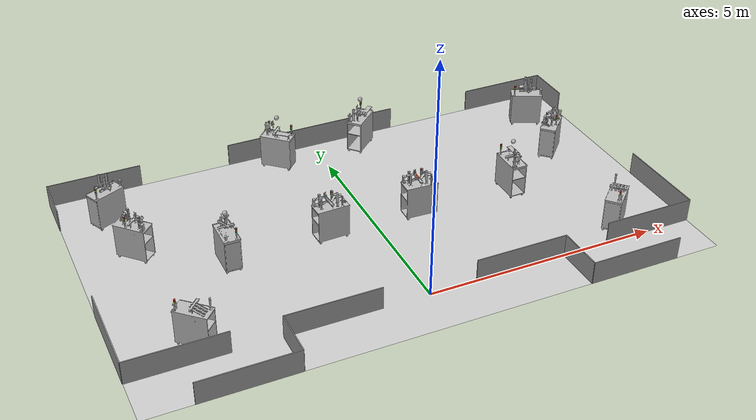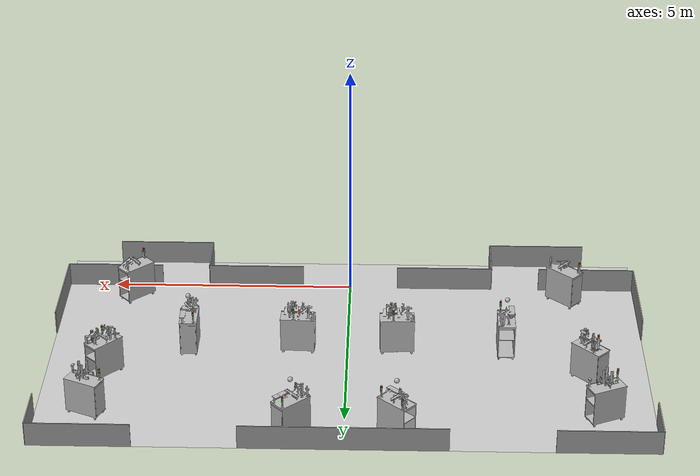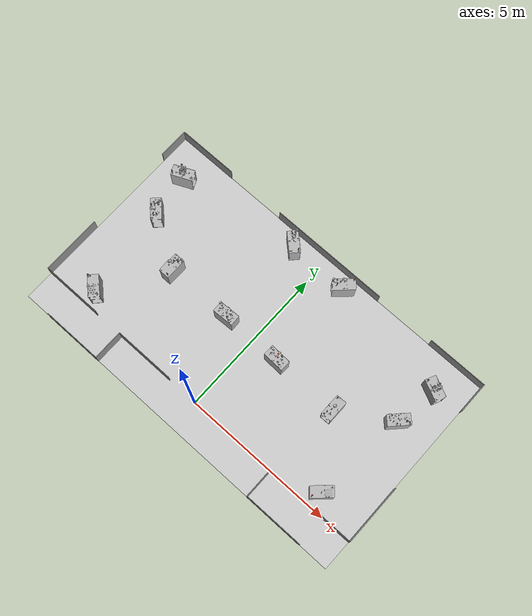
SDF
<?xml version="1.0"?>
<sdf version="1.4">
	<world name="bbu_2015">
	 <!-- Physics, to determine the simulation speed (step size and update rate) -->
		<physics type="ode">
			<max_step_size>0.00125</max_step_size>
			<real_time_factor>1</real_time_factor>
			<real_time_update_rate>1000</real_time_update_rate>
		</physics>

		<!-- A global light source -->
		<include>
		  <uri>model://sun</uri>
		</include>

		<include>
		  <uri>model://logistics_league_field</uri>
      	  <pose>0 2.5 0 0 0 0</pose>
		</include>

		<include>
		  <name>C-BS</name>
		  <uri>model://mps_base</uri>
      	  <pose>-5 4.9 0 0 0 0.43</pose>
		</include>
		<include>
		  <name>M-BS</name>
		  <uri>model://mps_base</uri>
      	  <pose>5 4.9 0 0 0 -0.43</pose>
		</include>

		<include>
		  <name>C-CS1</name>
		  <uri>model://mps_cap</uri>
      	  <pose>-1 5.5 0 0 0 2.4</pose>
		</include>
		<include>
		  <name>M-CS1</name>
		  <uri>model://mps_cap</uri>
      	  <pose>1 5.5 0 0 0 -2.4</pose>
		</include>

		<include>
		  <name>C-CS2</name>
		  <uri>model://mps_cap</uri>
      	  <pose>-3.2 2.5 0 0 0 1.57</pose>
		</include>
		<include>
		  <name>M-CS2</name>
		  <uri>model://mps_cap</uri>
      	  <pose>3.2 2.5 0 0 0 -1.57</pose>
		</include>

		<include>
		  <name>C-RS1</name>
		  <uri>model://mps_ring</uri>
      	  <pose>1 2.5 0 0 0 3.1</pose>
		</include>
		<include>
		  <name>M-RS1</name>
		  <uri>model://mps_ring</uri>
      	  <pose>-1 2.5 0 0 0 -3.1</pose>
		</include>

		<include>
		  <name>C-RS2</name>
		  <uri>model://mps_ring</uri>
      	  <pose>4.8 3.5 0 0 0 0.8</pose>
		</include>
		<include>
		  <name>M-RS2</name>
		  <uri>model://mps_ring</uri>
      	  <pose>-4.8 3.5 0 0 0 -0.8</pose>
		</include>

		<include>
		  <name>C-DS</name>
		  <uri>model://mps_delivery</uri>
      	  <pose>4.5 0.5 0 0 0 0.75</pose>
		</include>
		<include>
		  <name>M-DS</name>
		  <uri>model://mps_delivery</uri>
      	  <pose>-4.5 0.5 0 0 0 -0.75</pose>
		</include>

		<!-- Pucks  -->
		<include>
		  <name>puck_0</name>
		  <uri>model://workpiece_base</uri>
		  <pose>0.97 2.5 0.92 0 0 0</pose>
		</include>
		<include>
		  <name>puck_1</name>
		  <uri>model://workpiece_base</uri>
		  <pose>0.97 2.6 0.92 0 0 0</pose>
		</include>
	</world>
</sdf>

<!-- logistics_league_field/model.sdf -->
<sdf version="1.5">
  <model name="Logistics League Field 2016">
    <pose>0 2.5 0 0 0 0</pose>
    <static>true</static>
    <link name="field">
      <pose>0 0 0.01 0 0 0</pose>
      <collision name="collision">
        <geometry>
          <plane>
            <normal>0 0 1</normal>
            <size>12 7</size>
          </plane>
        </geometry>
        <surface>
          <friction>
            <ode>
              <mu>100</mu>
              <mu2>50</mu2>
            </ode>
          </friction>
        </surface>
      </collision>
      <visual name="carpet">
        <cast_shadows>false</cast_shadows>
        <geometry>
          <plane>
            <normal>0 0 1</normal>
            <size>12 7</size>
          </plane>
        </geometry>
        <material>
          <script>
            <uri>model://logistics_league_field/materials/scripts/</uri>
            <uri>model://logistics_league_field/materials/textures/</uri>
            <name>Logistics_League_Field/Image</name>
          </script>
        </material>
      </visual>
    </link>

    <link name="wall_bottom_middle_left">
      <pose>-2 -2.5 0.25 0 0 1.570796327</pose>
      <visual name="wall_bottom_middle_left-visual">
        <geometry>
          <box>
			<size>.02 2 .5</size>
          </box>
        </geometry>
        <cast_shadows>false</cast_shadows>
        <material>
	  <script>
	    <uri>file://media/materials/scripts/gazebo.material</uri>
	    <name>Gazebo/Grey</name>
	  </script>
        </material>
      </visual>
      <collision name="wall_bottom_middle_left-collision">
        <geometry>
		    <box>
			  <size>.02 2 .5</size>
		    </box>
        </geometry>
      </collision>
    </link>

    <link name="wall_bottom_middle_left_down">
      <pose>-3 -3 0.25 0 0 0</pose>
      <visual name="wall_bottom_middle_left_down-visual">
        <geometry>
          <box>
			<size>.02 1 .5</size>
          </box>
        </geometry>
        <cast_shadows>false</cast_shadows>
        <material>
	  <script>
	    <uri>file://media/materials/scripts/gazebo.material</uri>
	    <name>Gazebo/Grey</name>
	  </script>
        </material>
      </visual>
      <collision name="wall_bottom_middle_left_down-collision">
        <geometry>
		    <box>
			  <size>.02 1 .5</size>
		    </box>
        </geometry>
      </collision>
    </link>

    <link name="wall_bottom_middle_left_outer">
      <pose>-4 -3.5 0.25 0 0 1.570796327</pose>
      <visual name="wall_bottom_middle_left_outer-visual">
        <geometry>
          <box>
			<size>.02 2 .5</size>
          </box>
        </geometry>
        <cast_shadows>false</cast_shadows>
        <material>
	  <script>
	    <uri>file://media/materials/scripts/gazebo.material</uri>
	    <name>Gazebo/Grey</name>
	  </script>
        </material>
      </visual>
      <collision name="wall_bottom_middle_left_outer-collision">
        <geometry>
		    <box>
			  <size>.02 2 .5</size>
		    </box>
        </geometry>
      </collision>
    </link>

    <link name="wall_bottom_left">
      <pose>-5 -2.5 0.25 0 0 1.570796327</pose>
      <visual name="wall_bottom_left-visual">
        <geometry>
          <box>
			<size>.02 2 .5</size>
          </box>
        </geometry>
        <cast_shadows>false</cast_shadows>
        <material>
	  <script>
	    <uri>file://media/materials/scripts/gazebo.material</uri>
	    <name>Gazebo/Grey</name>
	  </script>
        </material>
      </visual>
      <collision name="wall_bottom_left-collision">
        <geometry>
		    <box>
			  <size>.02 2 .5</size>
		    </box>
        </geometry>
      </collision>
    </link>

    <link name="wall_bottom_middle_right">
      <pose>2 -2.5 0.25 0 0 1.570796327</pose>
      <visual name="wall_bottom_middle_right-visual">
        <geometry>
          <box>
			<size>.02 2 .5</size>
          </box>
        </geometry>
        <cast_shadows>false</cast_shadows>
        <material>
	  <script>
	    <uri>file://media/materials/scripts/gazebo.material</uri>
	    <name>Gazebo/Grey</name>
	  </script>
        </material>
      </visual>
      <collision name="wall_bottom_middle_right-collision">
        <geometry>
		    <box>
			  <size>.02 2 .5</size>
		    </box>
        </geometry>
      </collision>
    </link>

    <link name="wall_bottom_middle_right_down">
      <pose>3 -3 0.25 0 0 0</pose>
      <visual name="wall_bottom_middle_right_down-visual">
        <geometry>
          <box>
			<size>.02 1 .5</size>
          </box>
        </geometry>
        <cast_shadows>false</cast_shadows>
        <material>
	  <script>
	    <uri>file://media/materials/scripts/gazebo.material</uri>
	    <name>Gazebo/Grey</name>
	  </script>
        </material>
      </visual>
      <collision name="wall_bottom_middle_right_down-collision">
        <geometry>
		    <box>
			  <size>.02 1 .5</size>
		    </box>
        </geometry>
      </collision>
    </link>

    <link name="wall_bottom_middle_right_outer">
      <pose>4 -3.5 0.25 0 0 1.570796327</pose>
      <visual name="wall_bottom_middle_right_outer-visual">
        <geometry>
          <box>
			<size>.02 2 .5</size>
          </box>
        </geometry>
        <cast_shadows>false</cast_shadows>
        <material>
	  <script>
	    <uri>file://media/materials/scripts/gazebo.material</uri>
	    <name>Gazebo/Grey</name>
	  </script>
        </material>
      </visual>
      <collision name="wall_bottom_middle_right_outer-collision">
        <geometry>
		    <box>
			  <size>.02 2 .5</size>
		    </box>
        </geometry>
      </collision>
    </link>

    <link name="wall_bottom_right">
      <pose>5 -2.5 0.25 0 0 1.570796327</pose>
      <visual name="wall_bottom_right-visual">
        <geometry>
          <box>
			<size>.02 2 .5</size>
          </box>
        </geometry>
        <cast_shadows>false</cast_shadows>
        <material>
	  <script>
	    <uri>file://media/materials/scripts/gazebo.material</uri>
	    <name>Gazebo/Grey</name>
	  </script>
        </material>
      </visual>
      <collision name="wall_bottom_right-collision">
        <geometry>
		    <box>
			  <size>.02 2 .5</size>
		    </box>
        </geometry>
      </collision>
    </link>

    <link name="wall_left_bottom">
      <pose>-6 -1.5 0.25 0 0 0</pose>
      <visual name="wall_left_bottom-visual">
        <geometry>
          <box>
			<size>.02 2 .5</size>
          </box>
        </geometry>
        <cast_shadows>false</cast_shadows>
        <material>
	  <script>
	    <uri>file://media/materials/scripts/gazebo.material</uri>
	    <name>Gazebo/Grey</name>
	  </script>
        </material>
      </visual>
      <collision name="wall_left_bottom-collision">
        <geometry>
		    <box>
			  <size>.02 2 .5</size>
		    </box>
        </geometry>
      </collision>
    </link>

    <link name="wall_left_top">
      <pose>-6 3 0.25 0 0 0</pose>
      <visual name="wall_left_top-visual">
        <geometry>
          <box>
			<size>.02 1 .5</size>
          </box>
        </geometry>
        <cast_shadows>false</cast_shadows>
        <material>
	  <script>
	    <uri>file://media/materials/scripts/gazebo.material</uri>
	    <name>Gazebo/Grey</name>
	  </script>
        </material>
      </visual>
      <collision name="wall_left_top-collision">
        <geometry>
		    <box>
			  <size>.02 1 .5</size>
		    </box>
        </geometry>
      </collision>
    </link>

    <link name="wall_right_bottom">
      <pose>6 -1.5 0.25 0 0 0</pose>
      <visual name="wall_right_bottom-visual">
        <geometry>
          <box>
			<size>.02 2 .5</size>
          </box>
        </geometry>
        <cast_shadows>false</cast_shadows>
        <material>
	  <script>
	    <uri>file://media/materials/scripts/gazebo.material</uri>
	    <name>Gazebo/Grey</name>
	  </script>
        </material>
      </visual>
      <collision name="wall_right_bottom-collision">
        <geometry>
		    <box>
			  <size>.02 2 .5</size>
		    </box>
        </geometry>
      </collision>
    </link>

    <link name="wall_right_top">
      <pose>6 3 0.25 0 0 0</pose>
      <visual name="wall_right_top-visual">
        <geometry>
          <box>
			<size>.02 1 .5</size>
          </box>
        </geometry>
        <cast_shadows>false</cast_shadows>
        <material>
	  <script>
	    <uri>file://media/materials/scripts/gazebo.material</uri>
	    <name>Gazebo/Grey</name>
	  </script>
        </material>
      </visual>
      <collision name="wall_right_top-collision">
        <geometry>
		    <box>
			  <size>.02 1 .5</size>
		    </box>
        </geometry>
      </collision>
    </link>

    <link name="wall_top_middle">
      <pose>0 3.5 0.25 0 0 1.570796327</pose>
      <visual name="wall_top_middle-visual">
        <geometry>
          <box>
			<size>.02 4 .5</size>
          </box>
        </geometry>
        <cast_shadows>false</cast_shadows>
        <material>
	  <script>
	    <uri>file://media/materials/scripts/gazebo.material</uri>
	    <name>Gazebo/Grey</name>
	  </script>
        </material>
      </visual>
      <collision name="wall_top_middle-collision">
        <geometry>
		    <box>
			  <size>.02 4 .5</size>
		    </box>
        </geometry>
      </collision>
    </link>

    <link name="wall_top_left">
      <pose>-5 3.5 0.25 0 0 1.570796327</pose>
      <visual name="wall_top_left-visual">
        <geometry>
          <box>
			<size>.02 2 .5</size>
          </box>
        </geometry>
        <cast_shadows>false</cast_shadows>
        <material>
	  <script>
	    <uri>file://media/materials/scripts/gazebo.material</uri>
	    <name>Gazebo/Grey</name>
	  </script>
        </material>
      </visual>
      <collision name="wall_top_left-collision">
        <geometry>
		    <box>
			  <size>.02 2 .5</size>
		    </box>
        </geometry>
      </collision>
    </link>

    <link name="wall_top_right">
      <pose>5 3.5 0.25 0 0 1.570796327</pose>
      <visual name="wall_top_right-visual">
        <geometry>
          <box>
			<size>.02 2 .5</size>
          </box>
        </geometry>
        <cast_shadows>false</cast_shadows>
        <material>
	  <script>
	    <uri>file://media/materials/scripts/gazebo.material</uri>
	    <name>Gazebo/Grey</name>
	  </script>
        </material>
      </visual>
      <collision name="wall_top_right-collision">
        <geometry>
		    <box>
			  <size>.02 2 .5</size>
		    </box>
        </geometry>
      </collision>
    </link>

  </model>
</sdf>

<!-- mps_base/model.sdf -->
<sdf version="1.4">
  <model name="mps_base">
    <static>true</static>
    <link name="body">
      <pose>0 0 0.01 0 0 0</pose>
      <gravity>true</gravity>
      <inertial>
	<pose>0 0 0.005 0 0 0</pose>
        <mass>50</mass>
        <inertia>
	  <!-- according to http://en.wikipedia.org/wiki/List_of_moments_of_inertia for a solid box of width: 0.35, height:0.7, depth: 0.7, mass m=30 -->
          <ixx>2.45</ixx>
          <ixy>0.0</ixy>
          <ixz>0.0</ixz>
          <iyy>1.53125</iyy>
          <iyz>0.0</iyz>
          <izz>1.53125</izz>
        </inertia>
      </inertial>
      <visual name="body-visual">
	<pose>-0.35 .172 0 0 0 1.57</pose>
        <geometry>
          <mesh>
            <uri>model://mps_base/meshes/mps_base.dae</uri>
          </mesh>
        </geometry>
	<material>
          <script>
            <uri>model://mps_base/materials/scripts</uri>
            <uri>model://mps_base/materials/textures</uri>
            <name>mps_base</name>
          </script>
        </material>
        <cast_shadows>false</cast_shadows>
      </visual>
      <!-- Collision Elements: -->
            <collision name="collision_conveyor_belt">
        <pose>0.025 0 0.88 0 0 0 </pose>
        <geometry>
	  <box>
	    <size>0.03 0.35 0.04</size>
          </box>
        </geometry>
        <surface>
          <contact>
            <ode>
              <min_depth>0.01</min_depth>
            </ode>
          </contact>
        </surface>
      </collision>
      <collision name="collision_conveyor_belt_border_west">
        <pose>0 0 0.9 0 0 0 </pose>
        <geometry>
	  <box>
	    <size>0.01 0.35 0.02</size>
          </box>
        </geometry>
        <surface>
          <contact>
            <ode>
              <min_depth>0.01</min_depth>
            </ode>
          </contact>
        </surface>
      </collision>
      <collision name="collision_conveyor_belt_border_east">
        <pose>0.05 0 0.9 0 0 0 </pose>
        <geometry>
	  <box>
	    <size>0.01 0.35 0.02</size>
          </box>
        </geometry>
        <surface>
          <contact>
            <ode>
              <min_depth>0.01</min_depth>
            </ode>
          </contact>
        </surface>
      </collision>

      <!-- Box -->
      <collision name="collision_base_box_ground">
        <pose>0 0 0.06 0 0 0 </pose>
        <geometry>
	  <box>
	    <size>0.69 0.35 0.01</size>
          </box>
        </geometry>
        <surface>
          <contact>
            <ode>
              <min_depth>0.01</min_depth>
            </ode>
          </contact>
        </surface>
      </collision>
      <collision name="collision_base_box_wall_south">
        <pose>0 -0.175 0.42 0 0 0 </pose>
        <geometry>
	  <box>
	    <size>0.69 0.01 0.72</size>
          </box>
        </geometry>
        <surface>
          <contact>
            <ode>
              <min_depth>0.01</min_depth>
            </ode>
          </contact>
        </surface>
      </collision>
      <collision name="collision_base_box_wall_north">
        <pose>0 0.175 0.42 0 0 0 </pose>
        <geometry>
	  <box>
	    <size>0.69 0.01 0.72</size>
          </box>
        </geometry>
        <surface>
          <contact>
            <ode>
              <min_depth>0.01</min_depth>
            </ode>
          </contact>
        </surface>
      </collision>
      <!-- On both ends of the mps are transparent walls a laser sensor can look through, in the middle are solid walls -->
      <collision name="collision_base_box_wall_middle_1">
        <pose>-0.035 0 0.42 0 0 0 </pose>
        <geometry>
	  <box>
	    <size>0.01 0.35 0.72</size>
          </box>
        </geometry>
        <surface>
          <contact>
            <ode>
              <min_depth>0.01</min_depth>
            </ode>
          </contact>
        </surface>
      </collision>
      <collision name="collision_base_box_wall_middle_2">
        <pose>0.035 0 0.42 0 0 0 </pose>
        <geometry>
	  <box>
	    <size>0.01 0.35 0.72</size>
          </box>
        </geometry>
        <surface>
          <contact>
            <ode>
              <min_depth>0.01</min_depth>
            </ode>
          </contact>
        </surface>
      </collision>
      <collision name="collision_base_box_top">
        <pose>0 0 0.78 0 0 0 </pose>
        <geometry>
	  <box>
	    <size>0.69 0.35 0.01</size>
          </box>
        </geometry>
        <surface>
          <contact>
            <ode>
              <min_depth>0.01</min_depth>
            </ode>
          </contact>
        </surface>
      </collision>
      <collision name="collision_wheels">
	<!-- Collision to avoid that the box falls down (In reality done by wheels) -->
        <pose>0 0 0.01 0 0 0 </pose>
        <geometry>
	  <box>
	    <size>0.69 0.35 0.02</size>
          </box>
        </geometry>
        <surface>
          <contact>
            <ode>
              <min_depth>0.01</min_depth>
            </ode>
          </contact>
        </surface>
      </collision>
    </link>

    <include>
      <name>light_signals</name>
      <uri>model://light_signals</uri>
      <pose>-0.2905 -0.113 0.925 0 0 0</pose>
    </include>

    <link name="mps_tag_output">
      <pose>0.025 -0.175 0.54 0 0 -1.57</pose>
    </link>
    <link name="mps_tag_input">
      <pose>0.025 0.175 0.54 0 0 1.57</pose>
    </link>

    <joint name="mps_light_joint" type="revolute">
      <parent>body</parent>
      <child>light_signals::link</child>
      <axis>
        <limit>
          <lower>0</lower>
          <upper>0</upper>
        </limit>
        <xyz>0 0 1</xyz>
      </axis>
    </joint>

    <!-- Plugin to control the MPS and detect workpieces -->
    <plugin name="MPS" filename="libmps.so"/>
  </model>
</sdf>

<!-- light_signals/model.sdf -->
<sdf version="1.4">
  <model name="light_signal">
    <!-- The center is the bottom of the green light -->
    <pose>0 0 0.915 0 0 0 </pose>
    <static>true</static>
    <link name="link">
      <visual name="redon">
        <pose>0 0 0.085 0 0 0 </pose>
	<cast_shadows>false</cast_shadows>
        <geometry>
          <cylinder>
	    <radius>0.0195</radius>
	    <length>0.034</length>
          </cylinder>
        </geometry>
	<material>
	  <ambient>0.8 0 0 0.8</ambient>
	  <diffuse>0.8 0.0 0.0 0.8</diffuse>
	  <emissive>1.0 0.3 0.3 1.0</emissive>
	</material>
      </visual>
      <visual name="yellowon">
        <pose>0 0 0.051 0 0 0 </pose>
	<cast_shadows>false</cast_shadows>
        <geometry>
          <cylinder>
	    <radius>0.0195</radius>
	    <length>0.034</length>
          </cylinder>
        </geometry>
	<material>
	  <ambient>0.9 0.7 0 0.8</ambient>
	  <diffuse>0.9 0.7 0.0 0.8</diffuse>
	  <emissive>1.0 0.9 0.3 1.0</emissive>
	</material>
      </visual>
      <visual name="greenon">
        <pose>0 0 0.017 0 0 0 </pose>
	<cast_shadows>false</cast_shadows>
        <geometry>
          <cylinder>
	    <radius>0.0195</radius>
	    <length>0.034</length>
          </cylinder>
        </geometry>
	<material>
	  <ambient>0.0 0.8 0 0.8</ambient>
	  <diffuse>0.0 0.8 0.0 0.8</diffuse>
	  <emissive>0.3 1.0 0.3 1.0</emissive>
	</material>
     </visual>
    </link>

    <!-- Plugin to control the light signal -->
    <plugin name="MPS" filename="liblight_control.so"/>
  </model>
</sdf>

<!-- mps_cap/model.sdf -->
<sdf version="1.4">
  <model name="mps_cap">
    <static>true</static>
    <link name="body">
      <pose>0 0 0.01 0 0 0</pose>
      <gravity>true</gravity>
      <inertial>
	<pose>0 0 0.005 0 0 0</pose>
        <mass>50</mass>
        <inertia>
	  <!-- according to http://en.wikipedia.org/wiki/List_of_moments_of_inertia for a solid box of width: 0.35, height:0.7, depth: 0.7, mass m=30 -->
          <ixx>2.45</ixx>
          <ixy>0.0</ixy>
          <ixz>0.0</ixz>
          <iyy>1.53125</iyy>
          <iyz>0.0</iyz>
          <izz>1.53125</izz>
        </inertia>
      </inertial>
 <visual name="body-visual">
	<pose>-0.35 .172 0 0 0 1.57</pose>
        <geometry>
          <mesh>
            <uri>model://mps_cap/meshes/mps_cap.dae</uri>
          </mesh>
        </geometry>
	<material>
          <script>
            <uri>model://mps_cap/materials/scripts</uri>
            <uri>model://mps_cap/materials/textures</uri>
            <name>mps_cap</name>
          </script>
        </material>
        <cast_shadows>false</cast_shadows>
      </visual>      <!-- Shelf: -->
      <collision name="collision_shelf">
        <pose>-0.175 0.105 0.895 0 0 0 </pose>
        <geometry>
	  <box>
	    <size>0.295 0.12 0.01</size>
          </box>
        </geometry>
        <surface>
          <contact>
            <ode>
              <min_depth>0.01</min_depth>
            </ode>
          </contact>
        </surface>
      </collision>

      <!-- Collision Elements: -->
      <collision name="collision_conveyor_belt">
        <pose>0.025 0 0.88 0 0 0 </pose>
        <geometry>
	  <box>
	    <size>0.03 0.35 0.04</size>
          </box>
        </geometry>
        <surface>
          <contact>
            <ode>
              <min_depth>0.01</min_depth>
            </ode>
          </contact>
        </surface>
      </collision>
      <collision name="collision_conveyor_belt_border_west">
        <pose>0 0 0.9 0 0 0 </pose>
        <geometry>
	  <box>
	    <size>0.01 0.35 0.02</size>
          </box>
        </geometry>
        <surface>
          <contact>
            <ode>
              <min_depth>0.01</min_depth>
            </ode>
          </contact>
        </surface>
      </collision>
      <collision name="collision_conveyor_belt_border_east">
        <pose>0.05 0 0.9 0 0 0 </pose>
        <geometry>
	  <box>
	    <size>0.01 0.35 0.02</size>
          </box>
        </geometry>
        <surface>
          <contact>
            <ode>
              <min_depth>0.01</min_depth>
            </ode>
          </contact>
        </surface>
      </collision>

      <!-- Box -->
      <collision name="collision_base_box_ground">
        <pose>0 0 0.06 0 0 0 </pose>
        <geometry>
	  <box>
	    <size>0.69 0.35 0.01</size>
          </box>
        </geometry>
        <surface>
          <contact>
            <ode>
              <min_depth>0.01</min_depth>
            </ode>
          </contact>
        </surface>
      </collision>
      <collision name="collision_base_box_wall_south">
        <pose>0 -0.175 0.42 0 0 0 </pose>
        <geometry>
	  <box>
	    <size>0.69 0.01 0.72</size>
          </box>
        </geometry>
        <surface>
          <contact>
            <ode>
              <min_depth>0.01</min_depth>
            </ode>
          </contact>
        </surface>
      </collision>
      <collision name="collision_base_box_wall_north">
        <pose>0 0.175 0.42 0 0 0 </pose>
        <geometry>
	  <box>
	    <size>0.69 0.01 0.72</size>
          </box>
        </geometry>
        <surface>
          <contact>
            <ode>
              <min_depth>0.01</min_depth>
            </ode>
          </contact>
        </surface>
      </collision>
      <!-- On both ends of the mps are transparent walls a laser sensor can look through, in the middle are solid walls -->
      <collision name="collision_base_box_wall_middle_1">
        <pose>-0.035 0 0.42 0 0 0 </pose>
        <geometry>
	  <box>
	    <size>0.01 0.35 0.72</size>
          </box>
        </geometry>
        <surface>
          <contact>
            <ode>
              <min_depth>0.01</min_depth>
            </ode>
          </contact>
        </surface>
      </collision>
      <collision name="collision_base_box_wall_middle_2">
        <pose>0.035 0 0.42 0 0 0 </pose>
        <geometry>
	  <box>
	    <size>0.01 0.35 0.72</size>
          </box>
        </geometry>
        <surface>
          <contact>
            <ode>
              <min_depth>0.01</min_depth>
            </ode>
          </contact>
        </surface>
      </collision>
      <collision name="collision_base_box_top">
        <pose>0 0 0.78 0 0 0 </pose>
        <geometry>
	  <box>
	    <size>0.69 0.35 0.01</size>
          </box>
        </geometry>
        <surface>
          <contact>
            <ode>
              <min_depth>0.01</min_depth>
            </ode>
          </contact>
        </surface>
      </collision>
      <collision name="collision_wheels">
	<!-- Collision to avoid that the box falls down (In reality done by wheels) -->
        <pose>0 0 0.01 0 0 0 </pose>
        <geometry>
	  <box>
	    <size>0.69 0.35 0.02</size>
          </box>
        </geometry>
        <surface>
          <contact>
            <ode>
              <min_depth>0.01</min_depth>
            </ode>
          </contact>
        </surface>
      </collision>
      <visual name="have_cap">
        <cast_shadows>false</cast_shadows>
        <geometry>
          <sphere>
            <radius>0.05</radius>
          </sphere>
        </geometry>
        <pose>0 0 1.22 0 0 0</pose>
      </visual>
    </link>

    <include>
      <name>light_signals</name>
      <uri>model://light_signals</uri>
      <pose>-0.2905 -0.113 0.925 0 0 0</pose>
    </include>

    <link name="mps_tag_output">
      <pose>0.025 -0.175 0.54 0 0 -1.57</pose>
    </link>
    <link name="mps_tag_input">
      <pose>0.025 0.175 0.54 0 0 1.57</pose>
    </link>

    <joint name="mps_light_joint" type="revolute">
      <parent>body</parent>
      <child>light_signals::link</child>
      <axis>
        <limit>
          <lower>0</lower>
          <upper>0</upper>
        </limit>
        <xyz>0 0 1</xyz>
      </axis>
    </joint>

    <!-- Plugin to control the MPS and detect workpieces -->
    <plugin name="MPS" filename="libmps.so"/>
  </model>
</sdf>

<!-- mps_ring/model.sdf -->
<sdf version="1.4">
  <model name="mps_ring">
    <static>true</static>
    <link name="body">
      <pose>0 0 0.01 0 0 0</pose>
      <gravity>true</gravity>
      <inertial>
	<pose>0 0 0.005 0 0 0</pose>
        <mass>50</mass>
        <inertia>
	  <!-- according to http://en.wikipedia.org/wiki/List_of_moments_of_inertia for a solid box of width: 0.35, height:0.7, depth: 0.7, mass m=30 -->
          <ixx>2.45</ixx>
          <ixy>0.0</ixy>
          <ixz>0.0</ixz>
          <iyy>1.53125</iyy>
          <iyz>0.0</iyz>
          <izz>1.53125</izz>
        </inertia>
      </inertial>
       <visual name="body-visual">
	<pose>-0.35 .172 0 0 0 1.57</pose>
        <geometry>
          <mesh>
            <uri>model://mps_ring/meshes/mps_ring.dae</uri>
          </mesh>
        </geometry>
	<material>
          <script>
            <uri>model://mps_ring/materials/scripts</uri>
            <uri>model://mps_ring/materials/textures</uri>
            <name>mps_ring</name>
          </script>
        </material>
        <cast_shadows>false</cast_shadows>
      </visual>

      <!-- Collision Elements: -->
      <collision name="collision_conveyor_belt">
        <pose>0.025 0 0.88 0 0 0 </pose>
        <geometry>
	  <box>
	    <size>0.03 0.35 0.04</size>
          </box>
        </geometry>
        <surface>
          <contact>
            <ode>
              <min_depth>0.01</min_depth>
            </ode>
          </contact>
        </surface>
      </collision>
      <collision name="collision_conveyor_belt_border_west">
        <pose>0 0 0.9 0 0 0 </pose>
        <geometry>
	  <box>
	    <size>0.01 0.35 0.02</size>
          </box>
        </geometry>
        <surface>
          <contact>
            <ode>
              <min_depth>0.01</min_depth>
            </ode>
          </contact>
        </surface>
      </collision>
      <collision name="collision_conveyor_belt_border_east">
        <pose>0.05 0 0.9 0 0 0 </pose>
        <geometry>
	  <box>
	    <size>0.01 0.35 0.02</size>
          </box>
        </geometry>
        <surface>
          <contact>
            <ode>
              <min_depth>0.01</min_depth>
            </ode>
          </contact>
        </surface>
      </collision>

      <!-- Box -->
      <collision name="collision_base_box_ground">
        <pose>0 0 0.06 0 0 0 </pose>
        <geometry>
	  <box>
	    <size>0.69 0.35 0.01</size>
          </box>
        </geometry>
        <surface>
          <contact>
            <ode>
              <min_depth>0.01</min_depth>
            </ode>
          </contact>
        </surface>
      </collision>
      <collision name="collision_base_box_wall_south">
        <pose>0 -0.175 0.42 0 0 0 </pose>
        <geometry>
	  <box>
	    <size>0.69 0.01 0.72</size>
          </box>
        </geometry>
        <surface>
          <contact>
            <ode>
              <min_depth>0.01</min_depth>
            </ode>
          </contact>
        </surface>
      </collision>
      <collision name="collision_base_box_wall_north">
        <pose>0 0.175 0.42 0 0 0 </pose>
        <geometry>
	  <box>
	    <size>0.69 0.01 0.72</size>
          </box>
        </geometry>
        <surface>
          <contact>
            <ode>
              <min_depth>0.01</min_depth>
            </ode>
          </contact>
        </surface>
      </collision>
      <!-- On both ends of the mps are transparent walls a laser sensor can look through, in the middle are solid walls -->
      <collision name="collision_base_box_wall_middle_1">
        <pose>-0.035 0 0.42 0 0 0 </pose>
        <geometry>
	  <box>
	    <size>0.01 0.35 0.72</size>
          </box>
        </geometry>
        <surface>
          <contact>
            <ode>
              <min_depth>0.01</min_depth>
            </ode>
          </contact>
        </surface>
      </collision>
      <collision name="collision_base_box_wall_middle_2">
        <pose>0.035 0 0.42 0 0 0 </pose>
        <geometry>
	  <box>
	    <size>0.01 0.35 0.72</size>
          </box>
        </geometry>
        <surface>
          <contact>
            <ode>
              <min_depth>0.01</min_depth>
            </ode>
          </contact>
        </surface>
      </collision>
      <collision name="collision_base_box_top">
        <pose>0 0 0.78 0 0 0 </pose>
        <geometry>
	  <box>
	    <size>0.69 0.35 0.01</size>
          </box>
        </geometry>
        <surface>
          <contact>
            <ode>
              <min_depth>0.01</min_depth>
            </ode>
          </contact>
        </surface>
      </collision>
      <collision name="collision_wheels">
	<!-- Collision to avoid that the box falls down (In reality done by wheels) -->
        <pose>0 0 0.01 0 0 0 </pose>
        <geometry>
	  <box>
	    <size>0.69 0.35 0.02</size>
          </box>
        </geometry>
        <surface>
          <contact>
            <ode>
              <min_depth>0.01</min_depth>
            </ode>
          </contact>
        </surface>
      </collision>
      <visual name="base_0">
        <cast_shadows>false</cast_shadows>
        <geometry>
          <sphere>
            <radius>0.05</radius>
          </sphere>
        </geometry>
      </visual>
      <visual name="base_1">
        <cast_shadows>false</cast_shadows>
        <geometry>
          <sphere>
            <radius>0.05</radius>
          </sphere>
        </geometry>
      </visual>
      <visual name="base_2">
        <cast_shadows>false</cast_shadows>
        <geometry>
          <sphere>
            <radius>0.05</radius>
          </sphere>
        </geometry>
      </visual>
    </link>

    <include>
      <name>light_signals</name>
      <uri>model://light_signals</uri>
      <pose>-0.08 -0.127 0.925 0 0 0</pose>
    </include>

    <link name="mps_tag_output">
      <pose>0.025 -0.175 0.54 0 0 -1.57</pose>
    </link>
    <link name="mps_tag_input">
      <pose>0.025 0.175 0.54 0 0 1.57</pose>
    </link>

    <joint name="mps_light_joint" type="revolute">
      <parent>body</parent>
      <child>light_signals::link</child>
      <axis>
        <limit>
          <lower>0</lower>
          <upper>0</upper>
        </limit>
        <xyz>0 0 1</xyz>
      </axis>
    </joint>

    <!-- Plugin to control the MPS and detect workpieces -->
    <plugin name="MPS" filename="libmps.so"/>
  </model>
</sdf>

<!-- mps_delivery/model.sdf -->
<sdf version="1.4">
  <model name="mps_delivery">
    <static>true</static>
    <link name="body">
      <pose>0 0 0.01 0 0 0</pose>
      <gravity>true</gravity>
      <inertial>
	<pose>0 0 0.005 0 0 0</pose>
        <mass>50</mass>
        <inertia>
	  <!-- according to http://en.wikipedia.org/wiki/List_of_moments_of_inertia for a solid box of width: 0.35, height:0.7, depth: 0.7, mass m=30 -->
          <ixx>2.45</ixx>
          <ixy>0.0</ixy>
          <ixz>0.0</ixz>
          <iyy>1.53125</iyy>
          <iyz>0.0</iyz>
          <izz>1.53125</izz>
        </inertia>
      </inertial>
      <visual name="body-visual">
	<pose>-0.35 .172 0 0 0 1.57</pose>
        <geometry>
          <mesh>
            <uri>model://mps_delivery/meshes/mps_delivery.dae</uri>
          </mesh>
        </geometry>
	<material>
          <script>
            <uri>model://mps_delivery/materials/scripts</uri>
            <uri>model://mps_delivery/materials/textures</uri>
            <name>mps_delivery</name>
          </script>
        </material>
        <cast_shadows>false</cast_shadows>
      </visual>

      <!-- Collision Elements: -->
      <collision name="collision_conveyor_belt">
        <pose>0.025 0 0.88 0 0 0 </pose>
        <geometry>
	  <box>
	    <size>0.03 0.35 0.04</size>
          </box>
        </geometry>
        <surface>
          <contact>
            <ode>
              <min_depth>0.01</min_depth>
            </ode>
          </contact>
        </surface>
      </collision>
      <collision name="collision_conveyor_belt_border_west">
        <pose>0 0 0.9 0 0 0 </pose>
        <geometry>
	  <box>
	    <size>0.01 0.35 0.02</size>
          </box>
        </geometry>
        <surface>
          <contact>
            <ode>
              <min_depth>0.01</min_depth>
            </ode>
          </contact>
        </surface>
      </collision>
      <collision name="collision_conveyor_belt_border_east">
        <pose>0.05 0 0.9 0 0 0 </pose>
        <geometry>
	  <box>
	    <size>0.01 0.35 0.02</size>
          </box>
        </geometry>
        <surface>
          <contact>
            <ode>
              <min_depth>0.01</min_depth>
            </ode>
          </contact>
        </surface>
      </collision>

      <!-- Box -->
      <collision name="collision_base_box_ground">
        <pose>0 0 0.06 0 0 0 </pose>
        <geometry>
	  <box>
	    <size>0.69 0.35 0.01</size>
          </box>
        </geometry>
        <surface>
          <contact>
            <ode>
              <min_depth>0.01</min_depth>
            </ode>
          </contact>
        </surface>
      </collision>
      <collision name="collision_base_box_wall_south">
        <pose>0 -0.175 0.42 0 0 0 </pose>
        <geometry>
	  <box>
	    <size>0.69 0.01 0.72</size>
          </box>
        </geometry>
        <surface>
          <contact>
            <ode>
              <min_depth>0.01</min_depth>
            </ode>
          </contact>
        </surface>
      </collision>
      <collision name="collision_base_box_wall_north">
        <pose>0 0.175 0.42 0 0 0 </pose>
        <geometry>
	  <box>
	    <size>0.69 0.01 0.72</size>
          </box>
        </geometry>
        <surface>
          <contact>
            <ode>
              <min_depth>0.01</min_depth>
            </ode>
          </contact>
        </surface>
      </collision>
      <!-- On both ends of the mps are transparent walls a laser sensor can look through, in the middle are solid walls -->
      <collision name="collision_base_box_wall_middle_1">
        <pose>-0.035 0 0.42 0 0 0 </pose>
        <geometry>
	  <box>
	    <size>0.01 0.35 0.72</size>
          </box>
        </geometry>
        <surface>
          <contact>
            <ode>
              <min_depth>0.01</min_depth>
            </ode>
          </contact>
        </surface>
      </collision>
      <collision name="collision_base_box_wall_middle_2">
        <pose>0.035 0 0.42 0 0 0 </pose>
        <geometry>
	  <box>
	    <size>0.01 0.35 0.72</size>
          </box>
        </geometry>
        <surface>
          <contact>
            <ode>
              <min_depth>0.01</min_depth>
            </ode>
          </contact>
        </surface>
      </collision>
      <collision name="collision_base_box_top">
        <pose>0 0 0.78 0 0 0 </pose>
        <geometry>
	  <box>
	    <size>0.69 0.35 0.01</size>
          </box>
        </geometry>
        <surface>
          <contact>
            <ode>
              <min_depth>0.01</min_depth>
            </ode>
          </contact>
        </surface>
      </collision>
      <collision name="collision_wheels">
	<!-- Collision to avoid that the box falls down (In reality done by wheels) -->
        <pose>0 0 0.01 0 0 0 </pose>
        <geometry>
	  <box>
	    <size>0.69 0.35 0.02</size>
          </box>
        </geometry>
        <surface>
          <contact>
            <ode>
              <min_depth>0.01</min_depth>
            </ode>
          </contact>
        </surface>
      </collision>
    </link>

    <include>
      <name>light_signals</name>
      <uri>model://light_signals</uri>
      <pose>-0.2905 -0.113 0.925 0 0 0</pose>
    </include>

    <link name="mps_tag_output">
      <pose>0.025 -0.175 0.54 0 0 -1.57</pose>
    </link>
    <link name="mps_tag_input">
      <pose>0.025 0.175 0.54 0 0 1.57</pose>
    </link>

    <joint name="mps_light_joint" type="revolute">
      <parent>body</parent>
      <child>light_signals::link</child>
      <axis>
        <limit>
          <lower>0</lower>
          <upper>0</upper>
        </limit>
        <xyz>0 0 1</xyz>
      </axis>
    </joint>

    <!-- Plugin to control the MPS and detect workpieces -->
    <plugin name="MPS" filename="libmps.so"/>
  </model>
</sdf>

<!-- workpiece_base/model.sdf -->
<sdf version="1.4">
  <model name="workpiece_base">
    <pose>0 0 0.915 0 0 0 </pose>
    <static>false</static>
    <link name="cylinder">
      <gravity>true</gravity>
      <inertial>
        <mass>0.05</mass>
      </inertial>
      <collision name="cylinder_collision">
        <geometry>
          <cylinder>
            <radius>0.02</radius>
	    <length>0.0225</length>
          </cylinder>
        </geometry>
      	<surface>
      	  <friction>
      	    <ode>
      	      <mu>1.0</mu>
              <mu2>1.0</mu2>
              <slip1>0.0</slip1>
              <slip2>0.0</slip2>
      	    </ode>
      	  </friction>
          <contact>
            <ode>
              <min_depth>0.01</min_depth>
            </ode>
          </contact>
      	</surface>
      </collision>
      <visual name="cylinder_visual">
        <cast_shadows>false</cast_shadows>
        <geometry>
          <cylinder>
            <radius>0.02</radius>
	    <length>0.0225</length>
          </cylinder>
        </geometry>
	<material>
	  <ambient>1.0 0.35 0.0 1</ambient>
	  <diffuse>1.0 0.35 0.0 1</diffuse>
	</material>
      </visual>
      <visual name="ring_0">
      <cast_shadows>false</cast_shadows>
      <transparency>1</transparency>
        <geometry>
          <cylinder>
            <radius>0.02</radius>
            <length>0.008</length>
          </cylinder>
        </geometry>
      </visual>
      <visual name="ring_1">
      <cast_shadows>false</cast_shadows>
      <transparency>1</transparency>
        <geometry>
          <cylinder>
            <radius>0.02</radius>
            <length>0.008</length>
          </cylinder>
        </geometry>
      </visual>
      <visual name="ring_2">
      <cast_shadows>false</cast_shadows>
      <transparency>1</transparency>
        <geometry>
          <cylinder>
            <radius>0.02</radius>
            <length>0.008</length>
          </cylinder>
        </geometry>
      </visual>
      <visual name="cap">
      <cast_shadows>false</cast_shadows>
      <transparency>1</transparency>
        <geometry>
          <cylinder>
            <radius>0.02</radius>
            <length>0.004</length>
          </cylinder>
        </geometry>
      </visual>
    </link>

    <!-- GPS plugin to let others know where this base is -->
    <plugin name="Puck" filename="libpuck.so"/>
    <plugin name="GPS" filename="libgps.so"/>
  </model>
</sdf>
